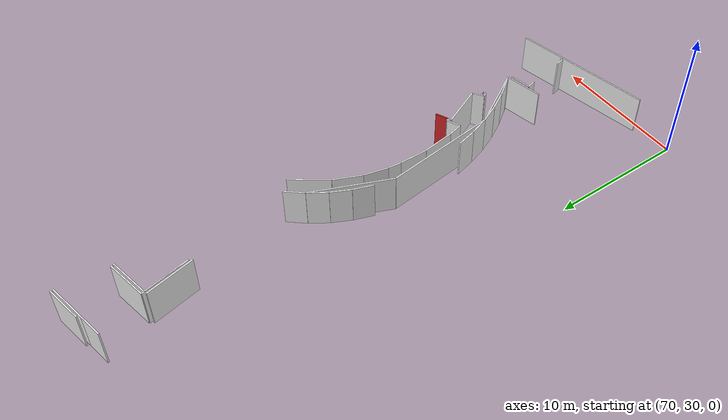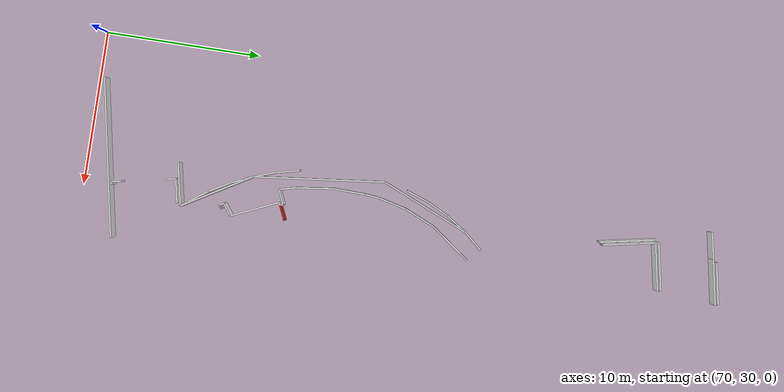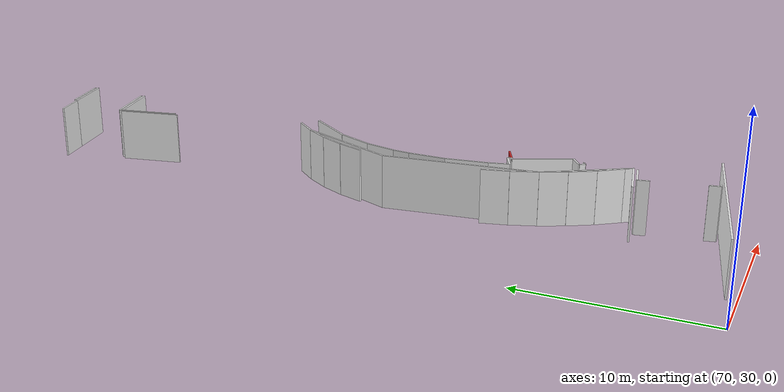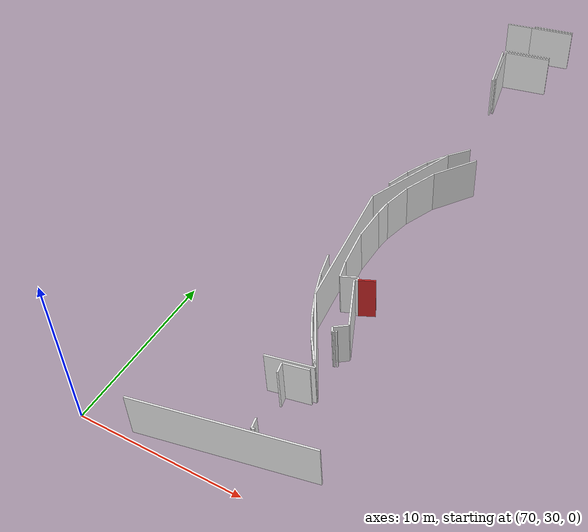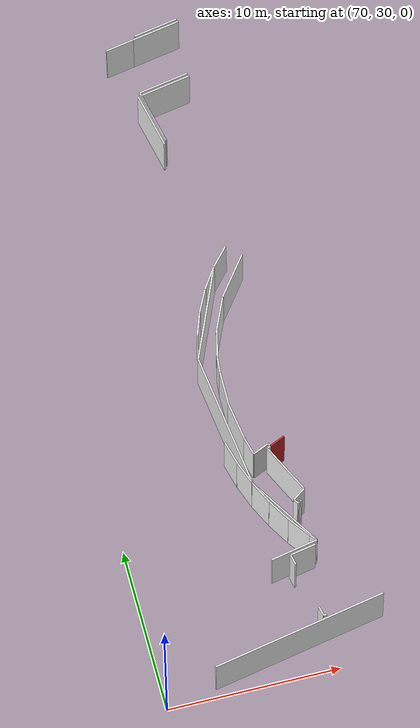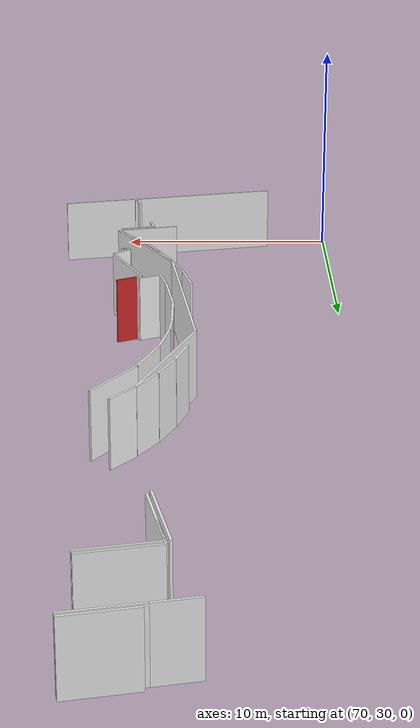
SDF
<sdf version="1.6">
 <world name="default">
  <model name="wall_79.8_43.2">
   <static>true</static>
   <pose>79.82500000001164 43.18500000005588 1.5 0 0 0.42331075582642225</pose>
   <link name="link">
    <visual name="visual">
     <geometry><box><size>0.9980981916532635 0.1 3</size></box></geometry>
     <material>
      <script><uri>file://media/materials/scripts/gazebo.material</uri><name>Gazebo/Red</name></script>
     </material>
    </visual>
    <collision name="collision"><geometry><box><size>0.9980981916532635 0.1 3</size></box></geometry></collision>
   </link>
  </model>
  <model name="wall_79.9_71.5">
   <static>true</static>
   <pose>79.93000000002212 71.50500000012107 1.5 0 0 0.19383178298877288</pose>
   <link name="link">
    <visual name="visual">
     <geometry><box><size>2.7515268488324223 0.1 3</size></box></geometry>
     <material>
      <script><uri>file://media/materials/scripts/gazebo.material</uri><name>Gazebo/White</name></script>
     </material>
    </visual>
    <collision name="collision"><geometry><box><size>2.7515268488324223 0.1 3</size></box></geometry></collision>
   </link>
  </model>
  <model name="wall_79.5_67.5">
   <static>true</static>
   <pose>79.48500000001513 67.47999999998137 1.5 0 0 -2.9473516575252563</pose>
   <link name="link">
    <visual name="visual">
     <geometry><box><size>3.1084562083905816 0.1 3</size></box></geometry>
     <material>
      <script><uri>file://media/materials/scripts/gazebo.material</uri><name>Gazebo/White</name></script>
     </material>
    </visual>
    <collision name="collision"><geometry><box><size>3.1084562083905816 0.1 3</size></box></geometry></collision>
   </link>
  </model>
  <model name="wall_78.3_65.5">
   <static>true</static>
   <pose>78.29000000000815 65.52000000001863 1.5 0 0 -1.3745595150025516</pose>
   <link name="link">
    <visual name="visual">
     <geometry><box><size>3.384966765264479 0.1 3</size></box></geometry>
     <material>
      <script><uri>file://media/materials/scripts/gazebo.material</uri><name>Gazebo/White</name></script>
     </material>
    </visual>
    <collision name="collision"><geometry><box><size>3.384966765264479 0.1 3</size></box></geometry></collision>
   </link>
  </model>
  <model name="wall_79.3_42.9">
   <static>true</static>
   <pose>79.26999999998952 42.93500000005588 1.5 0 0 0.4228539254915673</pose>
   <link name="link">
    <visual name="visual">
     <geometry><box><size>0.21931712194408015 0.1 3</size></box></geometry>
     <material>
      <script><uri>file://media/materials/scripts/gazebo.material</uri><name>Gazebo/White</name></script>
     </material>
    </visual>
    <collision name="collision"><geometry><box><size>0.21931712194408015 0.1 3</size></box></geometry></collision>
   </link>
  </model>
  <model name="wall_80.1_39.2">
   <static>true</static>
   <pose>80.14999999999418 39.21999999997206 1.5 0 0 -2.8966139902917303</pose>
   <link name="link">
    <visual name="visual">
     <geometry><box><size>0.08246211253268232 0.1 3</size></box></geometry>
     <material>
      <script><uri>file://media/materials/scripts/gazebo.material</uri><name>Gazebo/White</name></script>
     </material>
    </visual>
    <collision name="collision"><geometry><box><size>0.08246211253268232 0.1 3</size></box></geometry></collision>
   </link>
  </model>
  <model name="wall_80.0_39.1">
   <static>true</static>
   <pose>80.00499999997555 39.14500000001863 1.5 0 0 -2.521343169416129</pose>
   <link name="link">
    <visual name="visual">
     <geometry><box><size>0.08602325256784608 0.1 3</size></box></geometry>
     <material>
      <script><uri>file://media/materials/scripts/gazebo.material</uri><name>Gazebo/White</name></script>
     </material>
    </visual>
    <collision name="collision"><geometry><box><size>0.08602325256784608 0.1 3</size></box></geometry></collision>
   </link>
  </model>
  <model name="wall_79.9_39.2">
   <static>true</static>
   <pose>79.875 39.24499999987893 1.5 0 0 2.1327178891317615</pose>
   <link name="link">
    <visual name="visual">
     <geometry><box><size>0.3190611227089686 0.1 3</size></box></geometry>
     <material>
      <script><uri>file://media/materials/scripts/gazebo.material</uri><name>Gazebo/White</name></script>
     </material>
    </visual>
    <collision name="collision"><geometry><box><size>0.3190611227089686 0.1 3</size></box></geometry></collision>
   </link>
  </model>
  <model name="wall_80.2_39.6">
   <static>true</static>
   <pose>80.15499999999884 39.64500000001863 1.5 0 0 0.6279812908789976</pose>
   <link name="link">
    <visual name="visual">
     <geometry><box><size>0.9021086410927485 0.1 3</size></box></geometry>
     <material>
      <script><uri>file://media/materials/scripts/gazebo.material</uri><name>Gazebo/White</name></script>
     </material>
    </visual>
    <collision name="collision"><geometry><box><size>0.9021086410927485 0.1 3</size></box></geometry></collision>
   </link>
  </model>
  <model name="wall_79.8_41.4">
   <static>true</static>
   <pose>79.84500000000116 41.4000000001397 1.5 0 0 1.9961589584783586</pose>
   <link name="link">
    <visual name="visual">
     <geometry><box><size>3.2715286946599265 0.1 3</size></box></geometry>
     <material>
      <script><uri>file://media/materials/scripts/gazebo.material</uri><name>Gazebo/White</name></script>
     </material>
    </visual>
    <collision name="collision"><geometry><box><size>3.2715286946599265 0.1 3</size></box></geometry></collision>
   </link>
  </model>
  <model name="wall_78.1_50.1">
   <static>true</static>
   <pose>78.11000000001513 50.10499999998137 1.5 0 0 1.3352513460828392</pose>
   <link name="link">
    <visual name="visual">
     <geometry><box><size>1.7996944185017383 0.1 3</size></box></geometry>
     <material>
      <script><uri>file://media/materials/scripts/gazebo.material</uri><name>Gazebo/White</name></script>
     </material>
    </visual>
    <collision name="collision"><geometry><box><size>1.7996944185017383 0.1 3</size></box></geometry></collision>
   </link>
  </model>
  <model name="wall_78.8_52.0">
   <static>true</static>
   <pose>78.75 51.96500000008382 1.5 0 0 1.1591850326473987</pose>
   <link name="link">
    <visual name="visual">
     <geometry><box><size>2.1495348335821967 0.1 3</size></box></geometry>
     <material>
      <script><uri>file://media/materials/scripts/gazebo.material</uri><name>Gazebo/White</name></script>
     </material>
    </visual>
    <collision name="collision"><geometry><box><size>2.1495348335821967 0.1 3</size></box></geometry></collision>
   </link>
  </model>
  <model name="wall_80.1_54.2">
   <static>true</static>
   <pose>80.07499999998254 54.16500000003725 1.5 0 0 0.9359099816356786</pose>
   <link name="link">
    <visual name="visual">
     <geometry><box><size>3.018111992368174 0.1 3</size></box></geometry>
     <material>
      <script><uri>file://media/materials/scripts/gazebo.material</uri><name>Gazebo/White</name></script>
     </material>
    </visual>
    <collision name="collision"><geometry><box><size>3.018111992368174 0.1 3</size></box></geometry></collision>
   </link>
  </model>
  <model name="wall_79.3_43.1">
   <static>true</static>
   <pose>79.32500000001164 43.07000000006519 1.5 0 0 2.0344439352783015</pose>
   <link name="link">
    <visual name="visual">
     <geometry><box><size>0.20124611811034362 0.1 3</size></box></geometry>
     <material>
      <script><uri>file://media/materials/scripts/gazebo.material</uri><name>Gazebo/White</name></script>
     </material>
    </visual>
    <collision name="collision"><geometry><box><size>0.20124611811034362 0.1 3</size></box></geometry></collision>
   </link>
  </model>
  <model name="wall_78.8_43.0">
   <static>true</static>
   <pose>78.81000000002678 42.950000000186265 1.5 0 0 -2.7213959400475116</pose>
   <link name="link">
    <visual name="visual">
     <geometry><box><size>1.029563014070432 0.1 3</size></box></geometry>
     <material>
      <script><uri>file://media/materials/scripts/gazebo.material</uri><name>Gazebo/White</name></script>
     </material>
    </visual>
    <collision name="collision"><geometry><box><size>1.029563014070432 0.1 3</size></box></geometry></collision>
   </link>
  </model>
  <model name="wall_78.2_43.3">
   <static>true</static>
   <pose>78.2050000000163 43.28500000014901 1.5 0 0 1.8136151661143607</pose>
   <link name="link">
    <visual name="visual">
     <geometry><box><size>1.1229425629502219 0.1 3</size></box></geometry>
     <material>
      <script><uri>file://media/materials/scripts/gazebo.material</uri><name>Gazebo/White</name></script>
     </material>
    </visual>
    <collision name="collision"><geometry><box><size>1.1229425629502219 0.1 3</size></box></geometry></collision>
   </link>
  </model>
  <model name="wall_77.9_45.0">
   <static>true</static>
   <pose>77.91500000000815 45.0 1.5 0 0 1.7025079936748562</pose>
   <link name="link">
    <visual name="visual">
     <geometry><box><size>2.360444873175644 0.1 3</size></box></geometry>
     <material>
      <script><uri>file://media/materials/scripts/gazebo.material</uri><name>Gazebo/White</name></script>
     </material>
    </visual>
    <collision name="collision"><geometry><box><size>2.360444873175644 0.1 3</size></box></geometry></collision>
   </link>
  </model>
  <model name="wall_77.8_47.2">
   <static>true</static>
   <pose>77.77999999999884 47.21499999985099 1.5 0 0 1.5516599071002037</pose>
   <link name="link">
    <visual name="visual">
     <geometry><box><size>2.090382739924786 0.1 3</size></box></geometry>
     <material>
      <script><uri>file://media/materials/scripts/gazebo.material</uri><name>Gazebo/White</name></script>
     </material>
    </visual>
    <collision name="collision"><geometry><box><size>2.090382739924786 0.1 3</size></box></geometry></collision>
   </link>
  </model>
  <model name="wall_77.9_48.7">
   <static>true</static>
   <pose>77.85000000000582 48.74499999987893 1.5 0 0 1.4680664593621482</pose>
   <link name="link">
    <visual name="visual">
     <geometry><box><size>0.9751410156507998 0.1 3</size></box></geometry>
     <material>
      <script><uri>file://media/materials/scripts/gazebo.material</uri><name>Gazebo/White</name></script>
     </material>
    </visual>
    <collision name="collision"><geometry><box><size>0.9751410156507998 0.1 3</size></box></geometry></collision>
   </link>
  </model>
  <model name="wall_77.6_70.8">
   <static>true</static>
   <pose>77.57000000000698 70.83999999985099 1.5 0 0 0.1951584270363837</pose>
   <link name="link">
    <visual name="visual">
     <geometry><box><size>1.7532826354591435 0.1 3</size></box></geometry>
     <material>
      <script><uri>file://media/materials/scripts/gazebo.material</uri><name>Gazebo/White</name></script>
     </material>
    </visual>
    <collision name="collision"><geometry><box><size>1.7532826354591435 0.1 3</size></box></geometry></collision>
   </link>
  </model>
  <model name="wall_79.4_67.7">
   <static>true</static>
   <pose>79.44000000000233 67.67999999993481 1.5 0 0 -2.946728733873762</pose>
   <link name="link">
    <visual name="visual">
     <geometry><box><size>3.0986448651528713 0.1 3</size></box></geometry>
     <material>
      <script><uri>file://media/materials/scripts/gazebo.material</uri><name>Gazebo/White</name></script>
     </material>
    </visual>
    <collision name="collision"><geometry><box><size>3.0986448651528713 0.1 3</size></box></geometry></collision>
   </link>
  </model>
  <model name="wall_79.9_71.3">
   <static>true</static>
   <pose>79.875 71.2949999999255 1.5 0 0 0.1947324503984289</pose>
   <link name="link">
    <visual name="visual">
     <geometry><box><size>2.9456747954281193 0.1 3</size></box></geometry>
     <material>
      <script><uri>file://media/materials/scripts/gazebo.material</uri><name>Gazebo/White</name></script>
     </material>
    </visual>
    <collision name="collision"><geometry><box><size>2.9456747954281193 0.1 3</size></box></geometry></collision>
   </link>
  </model>
  <model name="wall_79.6_32.1">
   <static>true</static>
   <pose>79.61500000001979 32.05499999993481 1.5 0 0 -2.966920455733987</pose>
   <link name="link">
    <visual name="visual">
     <geometry><box><size>0.1726267649646635 0.1 3</size></box></geometry>
     <material>
      <script><uri>file://media/materials/scripts/gazebo.material</uri><name>Gazebo/White</name></script>
     </material>
    </visual>
    <collision name="collision"><geometry><box><size>0.1726267649646635 0.1 3</size></box></geometry></collision>
   </link>
  </model>
  <model name="wall_79.5_32.3">
   <static>true</static>
   <pose>79.47000000000116 32.34000000008382 1.5 0 0 1.7681918867007462</pose>
   <link name="link">
    <visual name="visual">
     <geometry><box><size>0.6118823417329601 0.1 3</size></box></geometry>
     <material>
      <script><uri>file://media/materials/scripts/gazebo.material</uri><name>Gazebo/White</name></script>
     </material>
    </visual>
    <collision name="collision"><geometry><box><size>0.6118823417329601 0.1 3</size></box></geometry></collision>
   </link>
  </model>
  <model name="wall_78.8_35.8">
   <static>true</static>
   <pose>78.77500000002328 35.78500000014901 1.5 0 0 1.7742893720946593</pose>
   <link name="link">
    <visual name="visual">
     <geometry><box><size>0.6432728813345039 0.1 3</size></box></geometry>
     <material>
      <script><uri>file://media/materials/scripts/gazebo.material</uri><name>Gazebo/White</name></script>
     </material>
    </visual>
    <collision name="collision"><geometry><box><size>0.6432728813345039 0.1 3</size></box></geometry></collision>
   </link>
  </model>
  <model name="wall_79.5_36.2">
   <static>true</static>
   <pose>79.47000000000116 36.25 1.5 0 0 0.194863919575871</pose>
   <link name="link">
    <visual name="visual">
     <geometry><box><size>1.549322432474246 0.1 3</size></box></geometry>
     <material>
      <script><uri>file://media/materials/scripts/gazebo.material</uri><name>Gazebo/White</name></script>
     </material>
    </visual>
    <collision name="collision"><geometry><box><size>1.549322432474246 0.1 3</size></box></geometry></collision>
   </link>
  </model>
  <model name="wall_78.1_65.4">
   <static>true</static>
   <pose>78.11999999999534 65.38500000000931 1.5 0 0 -1.3739487121216474</pose>
   <link name="link">
    <visual name="visual">
     <geometry><box><size>3.5791200038046584 0.1 3</size></box></geometry>
     <material>
      <script><uri>file://media/materials/scripts/gazebo.material</uri><name>Gazebo/White</name></script>
     </material>
    </visual>
    <collision name="collision"><geometry><box><size>3.5791200038046584 0.1 3</size></box></geometry></collision>
   </link>
  </model>
  <model name="wall_79.7_55.6">
   <static>true</static>
   <pose>79.69000000000233 55.57000000006519 1.5 0 0 -2.282255452669402</pose>
   <link name="link">
    <visual name="visual">
     <geometry><box><size>1.5315351772862982 0.1 3</size></box></geometry>
     <material>
      <script><uri>file://media/materials/scripts/gazebo.material</uri><name>Gazebo/White</name></script>
     </material>
    </visual>
    <collision name="collision"><geometry><box><size>1.5315351772862982 0.1 3</size></box></geometry></collision>
   </link>
  </model>
  <model name="wall_78.8_54.4">
   <static>true</static>
   <pose>78.76500000001397 54.35000000009313 1.5 0 0 -2.1569938780447484</pose>
   <link name="link">
    <visual name="visual">
     <geometry><box><size>1.5365220469059306 0.1 3</size></box></geometry>
     <material>
      <script><uri>file://media/materials/scripts/gazebo.material</uri><name>Gazebo/White</name></script>
     </material>
    </visual>
    <collision name="collision"><geometry><box><size>1.5365220469059306 0.1 3</size></box></geometry></collision>
   </link>
  </model>
  <model name="wall_78.0_53.0">
   <static>true</static>
   <pose>78.0 53.02000000001863 1.5 0 0 -2.0286300478758363</pose>
   <link name="link">
    <visual name="visual">
     <geometry><box><size>1.538440769012967 0.1 3</size></box></geometry>
     <material>
      <script><uri>file://media/materials/scripts/gazebo.material</uri><name>Gazebo/White</name></script>
     </material>
    </visual>
    <collision name="collision"><geometry><box><size>1.538440769012967 0.1 3</size></box></geometry></collision>
   </link>
  </model>
  <model name="wall_77.4_51.6">
   <static>true</static>
   <pose>77.40499999999884 51.610000000102445 1.5 0 0 -1.9111782654188452</pose>
   <link name="link">
    <visual name="visual">
     <geometry><box><size>1.527645246707885 0.1 3</size></box></geometry>
     <material>
      <script><uri>file://media/materials/scripts/gazebo.material</uri><name>Gazebo/White</name></script>
     </material>
    </visual>
    <collision name="collision"><geometry><box><size>1.527645246707885 0.1 3</size></box></geometry></collision>
   </link>
  </model>
  <model name="wall_77.1_43.1">
   <static>true</static>
   <pose>77.11999999999534 43.125 1.5 0 0 -1.3306253189027035</pose>
   <link name="link">
    <visual name="visual">
     <geometry><box><size>1.513439790418924 0.1 3</size></box></geometry>
     <material>
      <script><uri>file://media/materials/scripts/gazebo.material</uri><name>Gazebo/White</name></script>
     </material>
    </visual>
    <collision name="collision"><geometry><box><size>1.513439790418924 0.1 3</size></box></geometry></collision>
   </link>
  </model>
  <model name="wall_77.5_41.7">
   <static>true</static>
   <pose>77.54999999998836 41.675000000046566 1.5 0 0 -1.2344330339143665</pose>
   <link name="link">
    <visual name="visual">
     <geometry><box><size>1.5148927356349178 0.1 3</size></box></geometry>
     <material>
      <script><uri>file://media/materials/scripts/gazebo.material</uri><name>Gazebo/White</name></script>
     </material>
    </visual>
    <collision name="collision"><geometry><box><size>1.5148927356349178 0.1 3</size></box></geometry></collision>
   </link>
  </model>
  <model name="wall_78.1_40.3">
   <static>true</static>
   <pose>78.11499999999069 40.27499999990687 1.5 0 0 -1.1397780825490453</pose>
   <link name="link">
    <visual name="visual">
     <geometry><box><size>1.507912464406368 0.1 3</size></box></geometry>
     <material>
      <script><uri>file://media/materials/scripts/gazebo.material</uri><name>Gazebo/White</name></script>
     </material>
    </visual>
    <collision name="collision"><geometry><box><size>1.507912464406368 0.1 3</size></box></geometry></collision>
   </link>
  </model>
  <model name="wall_78.8_38.9">
   <static>true</static>
   <pose>78.80999999999767 38.92999999993481 1.5 0 0 -1.048392895018153</pose>
   <link name="link">
    <visual name="visual">
     <geometry><box><size>1.5231546210321498 0.1 3</size></box></geometry>
     <material>
      <script><uri>file://media/materials/scripts/gazebo.material</uri><name>Gazebo/White</name></script>
     </material>
    </visual>
    <collision name="collision"><geometry><box><size>1.5231546210321498 0.1 3</size></box></geometry></collision>
   </link>
  </model>
  <model name="wall_79.6_37.7">
   <static>true</static>
   <pose>79.63000000000466 37.65500000002794 1.5 0 0 -0.9497782014457066</pose>
   <link name="link">
    <visual name="visual">
     <geometry><box><size>1.5123822268072231 0.1 3</size></box></geometry>
     <material>
      <script><uri>file://media/materials/scripts/gazebo.material</uri><name>Gazebo/White</name></script>
     </material>
    </visual>
    <collision name="collision"><geometry><box><size>1.5123822268072231 0.1 3</size></box></geometry></collision>
   </link>
  </model>
  <model name="wall_80.2_36.8">
   <static>true</static>
   <pose>80.22500000000582 36.84000000008382 1.5 0 0 -0.911486258352942</pose>
   <link name="link">
    <visual name="visual">
     <geometry><box><size>0.5060632370801604 0.1 3</size></box></geometry>
     <material>
      <script><uri>file://media/materials/scripts/gazebo.material</uri><name>Gazebo/White</name></script>
     </material>
    </visual>
    <collision name="collision"><geometry><box><size>0.5060632370801604 0.1 3</size></box></geometry></collision>
   </link>
  </model>
  <model name="wall_79.0_36.4">
   <static>true</static>
   <pose>79.0 36.360000000102445 1.5 0 0 -2.9414115856051164</pose>
   <link name="link">
    <visual name="visual">
     <geometry><box><size>2.816238626273348 0.1 3</size></box></geometry>
     <material>
      <script><uri>file://media/materials/scripts/gazebo.material</uri><name>Gazebo/White</name></script>
     </material>
    </visual>
    <collision name="collision"><geometry><box><size>2.816238626273348 0.1 3</size></box></geometry></collision>
   </link>
  </model>
  <model name="wall_78.0_31.5">
   <static>true</static>
   <pose>78.02499999999418 31.540000000037253 1.5 0 0 0.19417892004540582</pose>
   <link name="link">
    <visual name="visual">
     <geometry><box><size>10.364791363055433 0.1 3</size></box></geometry>
     <material>
      <script><uri>file://media/materials/scripts/gazebo.material</uri><name>Gazebo/White</name></script>
     </material>
    </visual>
    <collision name="collision"><geometry><box><size>10.364791363055433 0.1 3</size></box></geometry></collision>
   </link>
  </model>
  <model name="wall_79.1_38.8">
   <static>true</static>
   <pose>79.08999999999651 38.800000000046566 1.5 0 0 2.10917084016099</pose>
   <link name="link">
    <visual name="visual">
     <geometry><box><size>5.031779009320233 0.1 3</size></box></geometry>
     <material>
      <script><uri>file://media/materials/scripts/gazebo.material</uri><name>Gazebo/White</name></script>
     </material>
    </visual>
    <collision name="collision"><geometry><box><size>5.031779009320233 0.1 3</size></box></geometry></collision>
   </link>
  </model>
  <model name="wall_77.3_45.2">
   <static>true</static>
   <pose>77.30999999999767 45.175000000046566 1.5 0 0 1.686528325479706</pose>
   <link name="link">
    <visual name="visual">
     <geometry><box><size>8.486772060258827 0.1 3</size></box></geometry>
     <material>
      <script><uri>file://media/materials/scripts/gazebo.material</uri><name>Gazebo/White</name></script>
     </material>
    </visual>
    <collision name="collision"><geometry><box><size>8.486772060258827 0.1 3</size></box></geometry></collision>
   </link>
  </model>
  <model name="wall_78.0_52.2">
   <static>true</static>
   <pose>78.00500000000466 52.19000000017695 1.5 0 0 1.1704391671759413</pose>
   <link name="link">
    <visual name="visual">
     <geometry><box><size>6.080863425618191 0.1 3</size></box></geometry>
     <material>
      <script><uri>file://media/materials/scripts/gazebo.material</uri><name>Gazebo/White</name></script>
     </material>
    </visual>
    <collision name="collision"><geometry><box><size>6.080863425618191 0.1 3</size></box></geometry></collision>
   </link>
  </model>
  <model name="wall_78.3_65.6">
   <static>true</static>
   <pose>78.26999999998952 65.61999999987893 1.5 0 0 1.7670989909072092</pose>
   <link name="link">
    <visual name="visual">
     <geometry><box><size>3.5889274163944065 0.1 3</size></box></geometry>
     <material>
      <script><uri>file://media/materials/scripts/gazebo.material</uri><name>Gazebo/White</name></script>
     </material>
    </visual>
    <collision name="collision"><geometry><box><size>3.5889274163944065 0.1 3</size></box></geometry></collision>
   </link>
  </model>
 </world>
</sdf>
